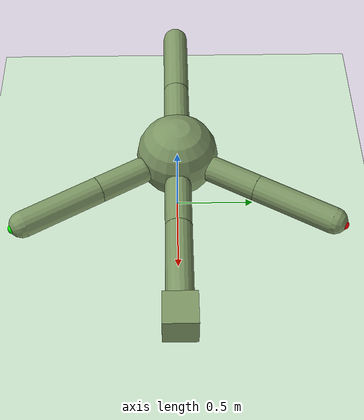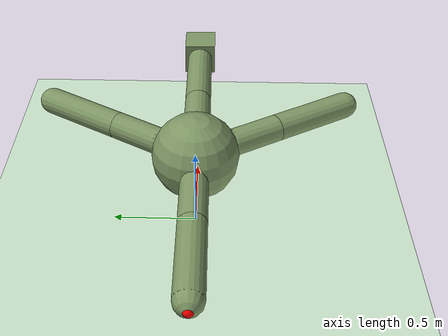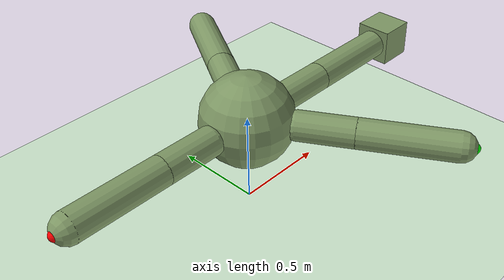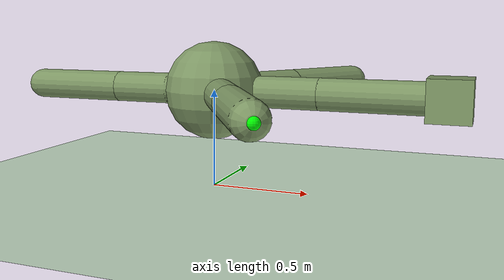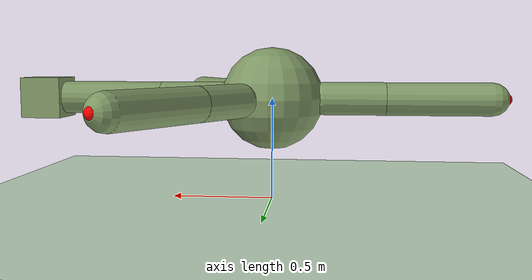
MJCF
<mujoco model="ant">
  <compiler angle="degree" coordinate="global"/>
  <option integrator="RK4" timestep="0.01"/>
  <custom>
    <numeric data="0.0 0.0 0.55 1.0 0.0 0.0 0.0 0.0 1.0 0.0 -1.0 0.0 -1.0 0.0 1.0" name="init_qpos"/>
  </custom>
  <default>
    <joint armature="1" damping="1" limited="true"/>
    <geom conaffinity="0" condim="3" density="5.0" friction="1 0.5 0.5" margin="0.01" rgba="0.5 0.6 0.4 1"/>
  </default>
  <asset>
    <texture builtin="gradient" height="100" rgb1="1 1 1" rgb2="0 0 0" type="skybox" width="100"/>
    <texture builtin="flat" height="1278" mark="cross" markrgb="1 1 1" name="texgeom" random="0.01" rgb1="0.8 0.6 0.4" rgb2="0.8 0.6 0.4" type="cube" width="127"/>
    <texture builtin="checker" height="100" name="texplane" rgb1="0 0 0" rgb2="0.8 0.8 0.8" type="2d" width="100"/>
    <material name="MatPlane" reflectance="0.5" shininess="1" specular="1" texrepeat="60 60" texture="texplane"/>
    <material name="geom" texture="texgeom" texuniform="true"/>
  </asset>
  <worldbody>
    <light cutoff="100" diffuse="1 1 1" dir="-0 0 -1.3" directional="true" exponent="1" pos="0 0 1.3" specular=".1 .1 .1"/>
    <geom conaffinity="1" condim="3" material="MatPlane" name="floor" pos="0 0 0" rgba="0.8 0.9 0.8 1" size="40 40 40" type="plane"/>
    <body name="torso" pos="0 0 0.5">
      <inertial pos="0 0 0.5" mass="1" diaginertia="1 1 1"/>
      <camera name="track" mode="trackcom" pos="0 -3 0.3" xyaxes="1 0 0 0 0 1"/>
      <geom name="torso_geom" pos="0 0 0.5" size="0.25" type="sphere"/>
      <site name="torso" pos="0 0 0.5" size=".03 .03 .03" type="ellipsoid" rgba="1 0 0 1"/>
      <joint armature="0" damping="0" limited="false" margin="0.01" name="root" pos="0 0 0" type="free"/>
        <body name="leg1">
            <inertial pos="0.4 0 0.5" mass="1" diaginertia="1 1 1"/>
            <geom fromto="0.25 0 0.5 0.55 0 0.5" size="0.08" type="capsule"/>
            <joint axis="0 1 0" name="hip1" type="hinge" range="-90 90" pos="0.25 0 0.5"/>
            <body>
                <inertial pos="0.8 0 0.5" mass="1" diaginertia="1 1 1"/>
                <joint axis="0 1 0" name="ankle1" type="hinge" range="-90 90" pos="0.55 0 0.5"/>
                <geom fromto="0.55 0.0 0.5 1.05 0.0 0.5" size="0.08" type="capsule"/>
                <body name="block">
                    <inertial pos="1.15 0 0.5" mass="2" diaginertia="1 1 1"/>
                    <joint type="hinge" pos="1.05 0 0.5" range="-90 90" axis="0 1 0"/>
                    <joint type="hinge" pos="1.05 0 0.5" range="-90 90" axis="0 0 1"/>
                    <geom type="box" size="0.1 0.1 0.1" pos="1.15 0 0.5"/>
                </body>

            </body>
       </body>
        <body name="leg2">
            <inertial pos="-0.4 0.0 0.5" mass="1" diaginertia="1 1 1"/>
            <geom fromto="-0.25 0.0 0.5 -0.55 0.0 0.5" size="0.08" type="capsule"/>
            <joint axis="0 0 1" name="hip2" type="hinge" range="-30 30" pos="-0.25 0.0 0.5"/>
            <body>
                <inertial pos="-0.8 0.0 0.5" mass="1" diaginertia="1 1 1"/>
                <joint axis="0 1 0" name="ankle2" type="hinge" range="-70 -30" pos="-0.55 0.0 0.5"/>
                <geom fromto="-0.55 0.0 0.5 -1.05 0.0 0.5" size="0.08" type="capsule"/>
                <body pos="-1.11 0.0 0.5">
                    <site name="foot2" pos="-1.11 0.0 0.5" size=".03 .03 .03" type="ellipsoid" rgba="1 0 0 1"/>
                </body>
            </body>
        </body>
        <body name="leg3">
            <inertial pos=".2 0.34641 0.5" mass="1" diaginertia="1 1 1"/>
            <geom fromto="0.125 0.2165 0.5 0.275 0.4763 0.5" size="0.08" type="capsule"/>
            <joint axis="0 0 1" name="hip3" type="hinge" range="-30 30" pos="0.125 0.2165 0.5"/>
            <body>
                <inertial pos="0.4 0.69282 0.5" mass="1" diaginertia="1 1 1"/>
                <joint axis="0.866 -0.5 0" name="ankle3" type="hinge" range="-70 -30" pos="0.275 0.4763 0.5"/>
                <geom fromto="0.275 0.4763 0.5 0.525 0.9093 0.5" size="0.08" type="capsule"/>
                <body pos="0.0 1.11 0.5">
                    <site name="foot3" pos="0.555 0.9613 0.5" size=".03 .03 .03" type="ellipsoid" rgba="1 0 0 1"/>
                </body>
            </body>
        </body>
        <body name="leg4">
            <inertial pos="0.2 -0.34641 0.5" mass="1" diaginertia="1 1 1"/>
            <geom fromto="0.125 -0.2165 0.5 0.275 -0.4763 0.5" size="0.08" type="capsule"/>
            <joint axis="0 0 1" name="hip4" type="hinge" range="-30 30" pos="0.125 -0.2165 0.5"/>
            <body>
                <inertial pos="0 -0.8 0.5" mass="1" diaginertia="1 1 1"/>
                <joint axis="-0.866 -0.5 0 " name="ankle4" type="hinge" range="-70 -30" pos="0.275 -0.4763 0.5"/>
                <geom fromto="0.275 -0.4763 0.5 0.525 -0.9093 0.5" size="0.08" type="capsule"/>
                <body pos="0.0 -1.11 0.5">
                    <site name="foot4" pos="0.555 -0.9613 0.5" size=".03 .03 .03" type="ellipsoid" rgba="0 1 0 1"/>
                </body>
            </body>
        </body>
    </body>
  </worldbody>
  <sensor>
    <touch name="foot2Sensor" site="foot2" />
    <touch name="torsoSensor" site="torso" />
  </sensor>
  <actuator>
    <motor ctrllimited="true" ctrlrange="-1.0 1.0" joint="hip1" gear="150"/>
    <motor ctrllimited="true" ctrlrange="-1.0 1.0" joint="ankle1" gear="150"/>
    <motor ctrllimited="true" ctrlrange="-1.0 1.0" joint="hip2" gear="150"/>
    <motor ctrllimited="true" ctrlrange="-1.0 1.0" joint="ankle2" gear="150"/>
    <motor ctrllimited="true" ctrlrange="-1.0 1.0" joint="hip3" gear="150"/>
    <motor ctrllimited="true" ctrlrange="-1.0 1.0" joint="ankle3" gear="150"/>
    <motor ctrllimited="true" ctrlrange="-1.0 1.0" joint="hip4" gear="150"/>
    <motor ctrllimited="true" ctrlrange="-1.0 1.0" joint="ankle4" gear="150"/>
  </actuator>
</mujoco>
